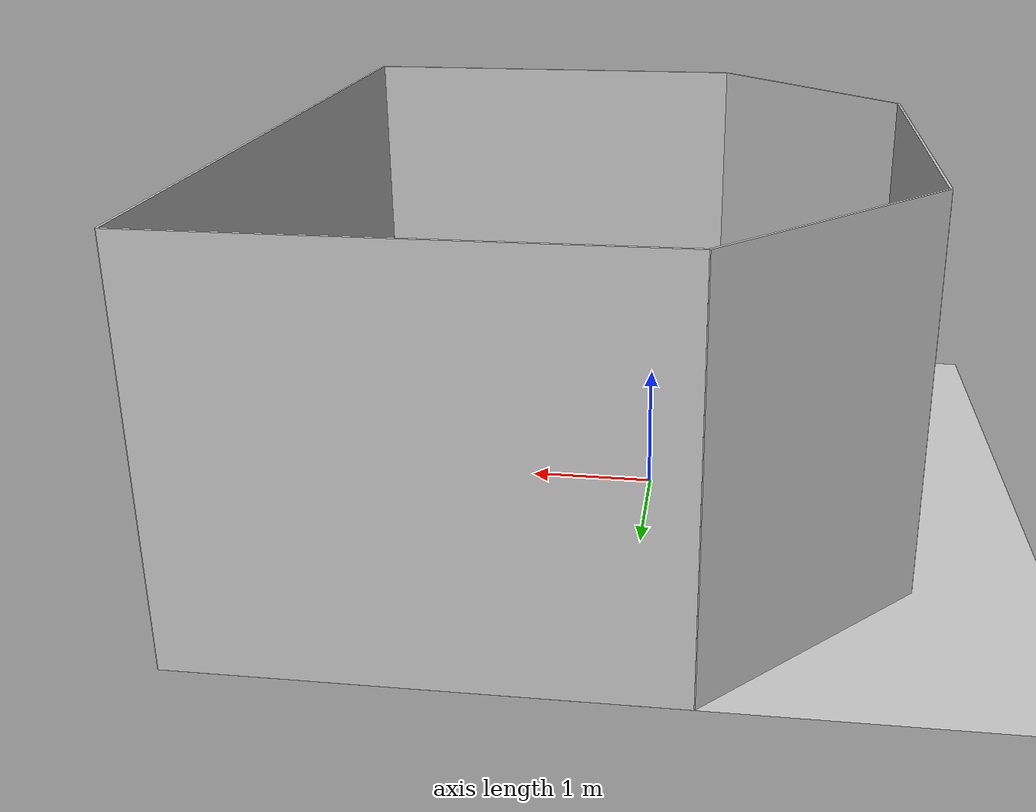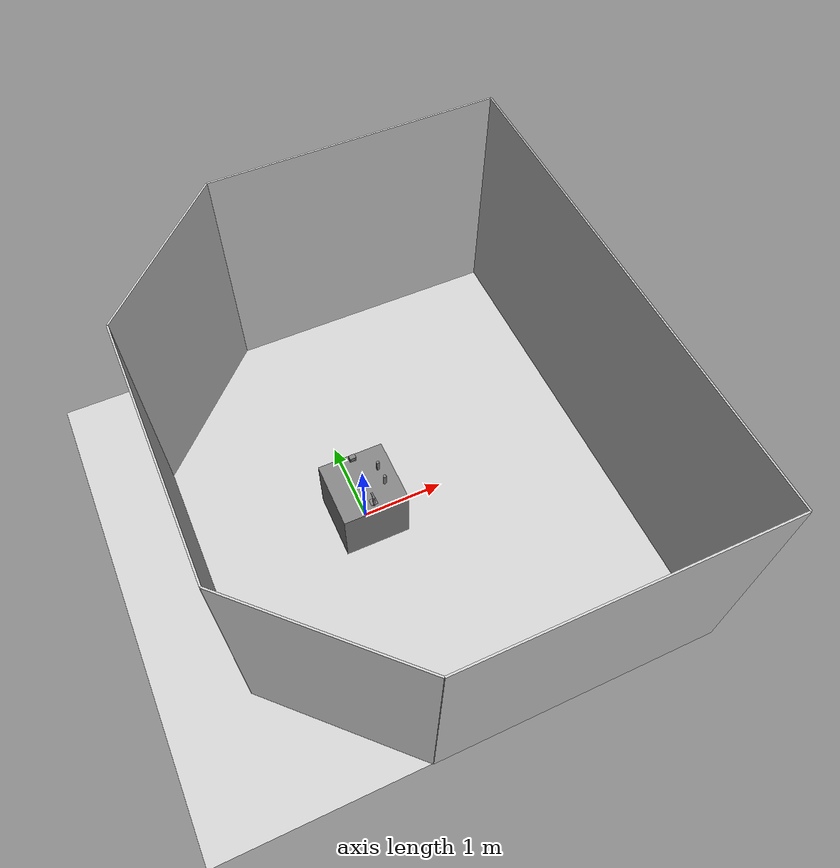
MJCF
<mujoco model="pegs_arena">
  <asset>
    <texture builtin="gradient" height="256" rgb1=".9 .9 1." rgb2=".2 .3 .4" type="skybox" width="256"/>
    <texture file="../textures/light-gray-floor-tile.png" type="2d" name="texplane"/>
    <material name="floorplane" reflectance="0.01" shininess="0.0" specular="0.0" texrepeat="2 2" texture="texplane" texuniform="true"/>
    <texture file="../textures/steel-scratched.png" type="cube" name="steel-metal"/>
    <texture file="../textures/brass-ambra.png" type="cube" name="brass-metal"/>
    <material name="smetal" reflectance="1.0" shininess="1.0" specular="1.0" texrepeat="1 1" texture="steel-metal" texuniform="true"/>
    <material name="bmetal"  reflectance="1.0" shininess="1.0" specular="1.0" texrepeat="1 1" texture="brass-metal" texuniform="true"/>
    <!-- ceramic table texture and material-->
    <texture file="../textures/ceramic.png" type="cube" name="tex-ceramic"/>
    <material name="table_ceramic" reflectance="0.0" shininess="0.0" specular="0.2" texrepeat="1 1" texture="tex-ceramic" />
    <!-- steel legs -->
    <texture file="../textures/steel-brushed.png" type="cube" name="tex-steel-brushed"/>
    <material name="table_legs_metal" reflectance="0.8" shininess="0.8" texrepeat="1 1" texture="tex-steel-brushed" />
    <!-- plaster walls -->
    <texture file="../textures/light-gray-plaster.png" type="2d" name="tex-light-gray-plaster"/>
    <material name="walls_mat" reflectance="0.0" shininess="0.1" specular="0.1" texrepeat="3 3" texture="tex-light-gray-plaster" texuniform="true" />
    <!-- added table texture and material for domain randomization -->
    <texture  name="textable" builtin="flat" height="512" width="512" rgb1="0.5 0.5 0.5" rgb2="0.5 0.5 0.5"/>
    <material name="table_mat" texture="textable" />

  </asset>
  <worldbody>
    <!-- Floor -->
    <geom condim="3" group="1" material="floorplane" name="floor" pos="0 0 0" size="3 3 .125" type="plane"/>
    <!-- Walls (visual only) -->
    <geom pos="-1.25 2.25 1.5" quat="0.6532815 0.6532815 0.2705981 0.2705981" size="1.06 1.5 0.01" type="box" conaffinity="0" contype="0" group="1" name="wall_leftcorner_visual" material="walls_mat"/>
    <geom pos="-1.25 -2.25 1.5" quat="0.6532815 0.6532815 -0.2705981 -0.2705981" size="1.06 1.5 0.01" type="box" conaffinity="0" contype="0" group="1" name="wall_rightcorner_visual" material="walls_mat"/>
    <geom pos="1.25 3 1.5" quat="0.7071 0.7071 0 0" size="1.75 1.5 0.01" type="box" conaffinity="0" contype="0" group="1" name="wall_left_visual" material="walls_mat"/>
    <geom pos="1.25 -3 1.5" quat="0.7071 -0.7071 0 0" size="1.75 1.5 0.01" type="box" conaffinity="0" contype="0" group="1" name="wall_right_visual" material="walls_mat"/>
    <geom pos="-2 0 1.5" quat="0.5 0.5 0.5 0.5" size="1.5 1.5 0.01" type="box" conaffinity="0" contype="0" group="1" name="wall_rear_visual" material="walls_mat"/>
    <geom pos="3 0 1.5" quat="0.5 0.5 -0.5 -0.5" size="3 1.5 0.01" type="box" conaffinity="0" contype="0" group="1" name="wall_front_visual" material="walls_mat"/>
    <!-- Table body -->
    <body name="table" pos="0 0 0.4">
      <geom pos="0 0 0" size="0.4 0.4 0.4" type="box" group="0" name="table_collision" friction="1 0.005 0.0001"/>
      <geom pos="0 0 0" size="0.4 0.4 0.4" type="box" conaffinity="0" contype="0" group="1" name="table_visual" material="table_ceramic"/>
      <site pos="0 0 0.4" name="table_top" size="0.001 0.001 0.001" rgba="0 0 0 0"/>
      <!-- Legs (visual only) -->
      <geom pos="0 0 0" size="0.05 0.1" type="cylinder" conaffinity="0" contype="0" group="1" name="table_leg1_visual" material="table_legs_metal"/>
      <geom pos="0 0 0" size="0.05 0.1" type="cylinder" conaffinity="0" contype="0" group="1" name="table_leg2_visual" material="table_legs_metal"/>
      <geom pos="0 0 0" size="0.05 0.1" type="cylinder" conaffinity="0" contype="0" group="1" name="table_leg3_visual" material="table_legs_metal"/>
      <geom pos="0 0 0" size="0.05 0.1" type="cylinder" conaffinity="0" contype="0" group="1" name="table_leg4_visual" material="table_legs_metal"/>
    </body>
    <body name="peg1" pos="0.23 0.1 0.85">
      <geom pos="0 0 0" size="0.016 0.016 0.1" type="box" group="0" friction="1 0.005 0.0001"/>
      <geom pos="0 0 0" size="0.016 0.016 0.1" type="box" conaffinity="0" contype="0" group="1" material="bmetal" />
    </body>
    <body name="peg2" pos="0.23 -0.1 0.85">
      <geom pos="0 0 0" size="0.02 0.1" type="cylinder" group="0" friction="1 0.005 0.0001"/>
      <geom pos="0 0 0" size="0.02 0.1" type="cylinder" conaffinity="0" contype="0" group="1" material="smetal" />
    </body>

    <body name="hook" pos="-0.0 -0.3 0.85">
       <geom pos="0 0 0" size="0.04 0.04 0.005" type="box" group="0" friction="1 0.005 0.0001"/>
       <geom pos="0 0 0" size="0.04 0.04 0.005" type="box" conaffinity="0" contype="0" group="1" material="bmetal"/>
       <geom pos="0 -0.02 0.005" size="0.01 0.01 0.1" type="box" group="0" friction="1 0.005 0.0001"/>
       <geom pos="0 -0.02 0.005" size="0.01 0.01 0.1" type="box" conaffinity="0" contype="0" group="1" material="bmetal"/>
       <geom pos="0.006 0.02 0.10" size="0.01 0.04 0.01" type="box" group="0" friction="1 0.005 0.0001"/>
       <geom pos="0.006 0.02 0.10" size="0.01 0.04 0.01" type="box" conaffinity="0" contype="0" group="1" material="bmetal"/>
    </body>
    <body name="insertion" pos="0 0.315 0.8395">
      <geom pos="0 0 0.0105" size="0.0385 0.0275 0.0105" type="box" group="0" friction="1 0.005 0.0001" />
      <geom pos="0.03 0.0 0.0335" size="0.0085 0.0275 0.025" type="box" group="0" friction="1 0.005 0.0001"/>
      <geom pos="-0.03 0.0 0.0335" size="0.0085 0.0275 0.025" type="box" group="0" friction="1 0.005 0.0001"/>
      <geom pos="0 0 0.0565" size="0.0385 0.0275 0.0105" type="box" group="0" friction="1 0.005 0.0001"/>
      <geom pos="0 0 0.0105" size="0.0385 0.0275 0.0105" type="box"  conaffinity="0" contype="0" group="1" material="bmetal" />
      <geom pos="0.03 0.0 0.0335" size="0.0085 0.0275 0.025" type="box"  conaffinity="0" contype="0" group="1" material="bmetal" />
      <geom pos="-0.03 0.0 0.0335" size="0.0085 0.0275 0.025" type="box"  conaffinity="0" contype="0" group="1" material="bmetal" />
      <geom pos="0 0 0.0565" size="0.0385 0.0275 0.0105" type="box"  conaffinity="0" contype="0" group="1" material="bmetal" />
    </body>
    <light pos="1.0 1.0 1.5" dir="-0.2 -0.2 -1" specular="0.3 0.3 0.3" directional="true" castshadow="false"/>
    <!-- front view -->
    <camera mode="fixed" name="frontview" pos="1.6 0 1.45" quat="0.56 0.43 0.43 0.56"/>
    <!-- bird view -->
    <camera mode="fixed" name="birdview" pos="-0.2 0 3.0" quat="0.7071 0 0 0.7071"/>
    <!-- agent view -->
    <camera mode="fixed" name="agentview" pos="0.5 0 1.35" quat="0.653 0.271 0.271 0.653"/>
    <camera mode="fixed" name="agentviewinsert" pos="-0.35 0 3.0" quat="0.7010574 -0.092296 -0.092296 0.7010574"/>
    <!-- side view -->
    <camera mode="fixed" name="sideview" pos="-0.05651774593317116 1.2761224129427358 1.4879572214102434" quat="0.009905065491771751 0.006877963156909582 0.4912228352893879 0.706418094001364" />
  </worldbody>
</mujoco>
